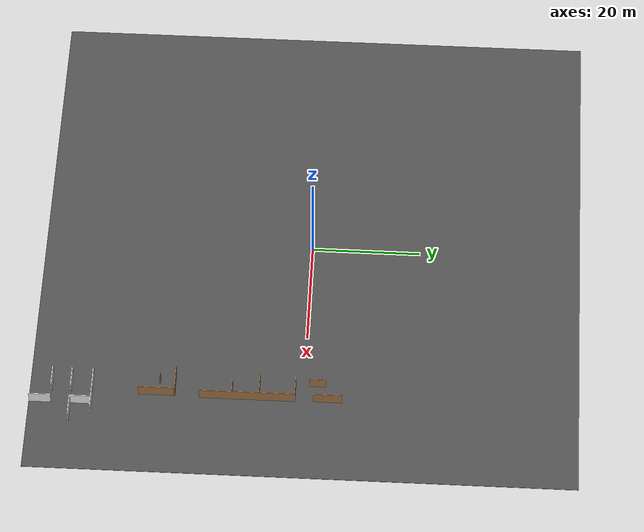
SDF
<sdf version="1.6">
 <world name="default">
  <model name="ground_plane">
   <static>1</static>
   <link name="link">
    <collision name="collision">
     <geometry><plane><normal>0 0 1</normal><size>100 100</size></plane></geometry>
     <surface><friction><ode><mu>100</mu><mu2>50</mu2></ode></friction></surface>
    </collision>
    <visual name="visual">
     <cast_shadows>0</cast_shadows>
     <geometry><plane><normal>0 0 1</normal><size>100 100</size></plane></geometry>
     <material>
      <script><uri>file://media/materials/scripts/gazebo.material</uri><name>Gazebo/Grey</name></script>
     </material>
    </visual>
   </link>
  </model>
  <model name="asphalt_plane">
   <static>1</static>
   <link name="link">
    <collision name="collision"><geometry><box><size>100 100 0.1</size></box></geometry></collision>
    <visual name="visual">
     <cast_shadows>0</cast_shadows>
     <geometry><box><size>100 100 0.1</size></box></geometry>
     <material>
      <script>
       <uri>model://asphalt_plane/materials/scripts</uri>
       <uri>model://asphalt_plane/materials/textures</uri>
       <name>vrc/asphalt</name>
      </script>
     </material>
    </visual>
   </link>
  </model>
  <model name="Medium_wall_wall_clone_0">
   <pose>35.9451 -38.5658 0 0 -0 0</pose>
   <link name="Wall_0">
    <collision name="Wall_0_Collision">
     <geometry><box><size>4 0.15 2.5</size></box></geometry>
     <pose>0 0 1.25 0 -0 0</pose>
    </collision>
    <visual name="Wall_0_Visual">
     <pose>0 0 1.25 0 -0 0</pose>
     <geometry><box><size>4 0.15 2.5</size></box></geometry>
     <material>
      <script><uri>file://media/materials/scripts/gazebo.material</uri><name>Gazebo/Medium_walls</name></script>
      <ambient>1 1 1 1</ambient>
     </material>
     <meta><layer>0</layer></meta>
    </visual>
   </link>
   <static>1</static>
  </model>
  <model name="Medium_wall_wall_clone_1">
   <pose>31.9451 -38.5658 0 0 -0 0</pose>
   <link name="Wall_0">
    <collision name="Wall_0_Collision">
     <geometry><box><size>4 0.15 2.5</size></box></geometry>
     <pose>0 0 1.25 0 -0 0</pose>
    </collision>
    <visual name="Wall_0_Visual">
     <pose>0 0 1.25 0 -0 0</pose>
     <geometry><box><size>4 0.15 2.5</size></box></geometry>
     <material>
      <script><uri>file://media/materials/scripts/gazebo.material</uri><name>Gazebo/Medium_walls</name></script>
      <ambient>1 1 1 1</ambient>
     </material>
     <meta><layer>0</layer></meta>
    </visual>
   </link>
   <static>1</static>
  </model>
  <model name="Medium_wall_wall_clone_3">
   <pose>31.9806 -42.4199 0 0 -0 0</pose>
   <link name="Wall_0">
    <collision name="Wall_0_Collision">
     <geometry><box><size>4 0.15 2.5</size></box></geometry>
     <pose>0 0 1.25 0 -0 0</pose>
    </collision>
    <visual name="Wall_0_Visual">
     <pose>0 0 1.25 0 -0 0</pose>
     <geometry><box><size>4 0.15 2.5</size></box></geometry>
     <material>
      <script><uri>file://media/materials/scripts/gazebo.material</uri><name>Gazebo/Medium_walls</name></script>
      <ambient>1 1 1 1</ambient>
     </material>
     <meta><layer>0</layer></meta>
    </visual>
   </link>
   <static>1</static>
  </model>
  <model name="Medium_wall_wall_clone_4">
   <pose>31.933 -45.9888 0 0 -0 0</pose>
   <link name="Wall_0">
    <collision name="Wall_0_Collision">
     <geometry><box><size>4 0.15 2.5</size></box></geometry>
     <pose>0 0 1.25 0 -0 0</pose>
    </collision>
    <visual name="Wall_0_Visual">
     <pose>0 0 1.25 0 -0 0</pose>
     <geometry><box><size>4 0.15 2.5</size></box></geometry>
     <material>
      <script><uri>file://media/materials/scripts/gazebo.material</uri><name>Gazebo/Medium_walls</name></script>
      <ambient>1 1 1 1</ambient>
     </material>
     <meta><layer>0</layer></meta>
    </visual>
   </link>
   <static>1</static>
  </model>
  <model name="Medium_wall_wall_1_clone_0">
   <pose>36.0534 -40.4954 0 0 -0 1.57079</pose>
   <link name="Wall_0">
    <collision name="Wall_0_Collision">
     <geometry><box><size>4 0.15 2.5</size></box></geometry>
     <pose>0 0 1.25 0 -0 0</pose>
    </collision>
    <visual name="Wall_0_Visual">
     <pose>0 0 1.25 0 -0 0</pose>
     <geometry><box><size>4 0.15 2.5</size></box></geometry>
     <material>
      <script><uri>file://media/materials/scripts/gazebo.material</uri><name>Gazebo/Medium_walls</name></script>
      <ambient>1 1 1 1</ambient>
     </material>
     <meta><layer>0</layer></meta>
    </visual>
   </link>
   <static>1</static>
  </model>
  <model name="Medium_wall_wall_1_clone_1">
   <pose>36.0534 -47.9139 0 0 -0 1.57079</pose>
   <link name="Wall_0">
    <collision name="Wall_0_Collision">
     <geometry><box><size>4 0.15 2.5</size></box></geometry>
     <pose>0 0 1.25 0 -0 0</pose>
    </collision>
    <visual name="Wall_0_Visual">
     <pose>0 0 1.25 0 -0 0</pose>
     <geometry><box><size>4 0.15 2.5</size></box></geometry>
     <material>
      <script><uri>file://media/materials/scripts/gazebo.material</uri><name>Gazebo/Medium_walls</name></script>
      <ambient>1 1 1 1</ambient>
     </material>
     <meta><layer>0</layer></meta>
    </visual>
   </link>
   <static>1</static>
  </model>
  <model name="Medium_wall_wall_clone_5">
   <pose>38.0534 -42.4199 0 0 -0 0</pose>
   <link name="Wall_0">
    <collision name="Wall_0_Collision">
     <geometry><box><size>4 0.15 2.5</size></box></geometry>
     <pose>0 0 1.25 0 -0 0</pose>
    </collision>
    <visual name="Wall_0_Visual">
     <pose>0 0 1.25 0 -0 0</pose>
     <geometry><box><size>4 0.15 2.5</size></box></geometry>
     <material>
      <script><uri>file://media/materials/scripts/gazebo.material</uri><name>Gazebo/Medium_walls</name></script>
      <ambient>1 1 1 1</ambient>
     </material>
     <meta><layer>0</layer></meta>
    </visual>
   </link>
   <static>1</static>
  </model>
  <model name="Soft_wall_v1_1">
   <pose>-14.3408 -3.86286 0 0 -0 0</pose>
   <link name="Wall_339">
    <collision name="Wall_339_Collision">
     <geometry><box><size>5.25 0.15 2.5</size></box></geometry>
     <pose>0 0 1.25 0 -0 0</pose>
    </collision>
    <visual name="Wall_339_Visual">
     <pose>0 0 1.25 0 -0 0</pose>
     <geometry><box><size>5.25 0.15 2.5</size></box></geometry>
     <material>
      <script><uri>file://media/materials/scripts/gazebo.material</uri><name>Gazebo/Wood</name></script>
      <ambient>1 1 1 1</ambient>
     </material>
     <meta><layer>0</layer></meta>
    </visual>
    <pose>47.9855 8.2459 0 0 0 -1.5708</pose>
   </link>
   <link name="Wall_343">
    <collision name="Wall_343_Collision">
     <geometry><box><size>17.5 0.15 2.5</size></box></geometry>
     <pose>0 0 1.25 0 -0 0</pose>
    </collision>
    <visual name="Wall_343_Visual">
     <pose>0 0 1.25 0 -0 0</pose>
     <geometry><box><size>17.5 0.15 2.5</size></box></geometry>
     <material>
      <script><uri>file://media/materials/scripts/gazebo.material</uri><name>Gazebo/Wood</name></script>
      <ambient>1 1 1 1</ambient>
     </material>
     <meta><layer>0</layer></meta>
    </visual>
    <pose>48.1101 -6.45706 0 0 0 -1.5708</pose>
   </link>
   <link name="Wall_348">
    <collision name="Wall_348_Collision">
     <geometry><box><size>6.75 0.15 2.5</size></box></geometry>
     <pose>0 0 1.25 0 -0 0</pose>
    </collision>
    <visual name="Wall_348_Visual">
     <pose>0 0 1.25 0 -0 0</pose>
     <geometry><box><size>6.75 0.15 2.5</size></box></geometry>
     <material>
      <script><uri>file://media/materials/scripts/gazebo.material</uri><name>Gazebo/Wood</name></script>
      <ambient>1 1 1 1</ambient>
     </material>
     <meta><layer>0</layer></meta>
    </visual>
    <pose>47.8962 -22.9805 0 0 -0 1.5708</pose>
   </link>
   <link name="Wall_350">
    <collision name="Wall_350_Collision">
     <geometry><box><size>4.25 0.15 2.5</size></box></geometry>
     <pose>0 0 1.25 0 -0 0</pose>
    </collision>
    <visual name="Wall_350_Visual">
     <pose>0 0 1.25 0 -0 0</pose>
     <geometry><box><size>4.25 0.15 2.5</size></box></geometry>
     <material>
      <script><uri>file://media/materials/scripts/gazebo.material</uri><name>Gazebo/Wood</name></script>
      <ambient>1 1 1 1</ambient>
     </material>
     <meta><layer>0</layer></meta>
    </visual>
    <pose>46.0601 2.21794 0 0 -0 3.14159</pose>
   </link>
   <link name="Wall_364">
    <collision name="Wall_364_Collision">
     <geometry><box><size>4 0.15 2.5</size></box></geometry>
     <pose>0 0 1.25 0 -0 0</pose>
    </collision>
    <visual name="Wall_364_Visual">
     <pose>0 0 1.25 0 -0 0</pose>
     <geometry><box><size>4 0.15 2.5</size></box></geometry>
     <material>
      <script><uri>file://media/materials/scripts/gazebo.material</uri><name>Gazebo/Wood</name></script>
      <ambient>1 1 1 1</ambient>
     </material>
     <meta><layer>0</layer></meta>
    </visual>
    <pose>46.1523 -4.31048 0 0 -0 3.14159</pose>
   </link>
   <link name="Wall_367">
    <collision name="Wall_367_Collision">
     <geometry><box><size>3 0.15 2.5</size></box></geometry>
     <pose>0 0 1.25 0 -0 0</pose>
    </collision>
    <visual name="Wall_367_Visual">
     <pose>0 0 1.25 0 -0 0</pose>
     <geometry><box><size>3 0.15 2.5</size></box></geometry>
     <material>
      <script><uri>file://media/materials/scripts/gazebo.material</uri><name>Gazebo/Wood</name></script>
      <ambient>1 1 1 1</ambient>
     </material>
     <meta><layer>0</layer></meta>
    </visual>
    <pose>46.6523 -9.27408 0 0 -0 3.14159</pose>
   </link>
   <link name="Wall_384">
    <collision name="Wall_384_Collision">
     <geometry><box><size>3 0.15 2.5</size></box></geometry>
     <pose>0 0 1.25 0 -0 0</pose>
    </collision>
    <visual name="Wall_384_Visual">
     <pose>0 0 1.25 0 -0 0</pose>
     <geometry><box><size>3 0.15 2.5</size></box></geometry>
     <material>
      <script><uri>file://media/materials/scripts/gazebo.material</uri><name>Gazebo/Wood</name></script>
      <ambient>1 1 1 1</ambient>
     </material>
     <meta><layer>0</layer></meta>
    </visual>
    <pose>44.7424 6.32192 0 0 -0 1.5708</pose>
   </link>
   <link name="Wall_412">
    <collision name="Wall_412_Collision">
     <geometry><box><size>4.75 0.15 2.5</size></box></geometry>
     <pose>0 0 1.25 0 -0 0</pose>
    </collision>
    <visual name="Wall_412_Visual">
     <pose>0 0 1.25 0 -0 0</pose>
     <geometry><box><size>4.75 0.15 2.5</size></box></geometry>
     <material>
      <script><uri>file://media/materials/scripts/gazebo.material</uri><name>Gazebo/Wood</name></script>
      <ambient>1 1 1 1</ambient>
     </material>
     <meta><layer>0</layer></meta>
    </visual>
    <pose>45.5962 -19.6805 0 0 -0 3.14159</pose>
   </link>
   <link name="Wall_415">
    <collision name="Wall_415_Collision">
     <geometry><box><size>1.25 0.15 2.5</size></box></geometry>
     <pose>0 0 1.25 0 -0 0</pose>
    </collision>
    <visual name="Wall_415_Visual">
     <pose>0 0 1.25 0 -0 0</pose>
     <geometry><box><size>1.25 0.15 2.5</size></box></geometry>
     <material>
      <script><uri>file://media/materials/scripts/gazebo.material</uri><name>Gazebo/Wood</name></script>
      <ambient>1 1 1 1</ambient>
     </material>
     <meta><layer>0</layer></meta>
    </visual>
    <pose>45.0231 -22.4985 0 0 -0 0</pose>
   </link>
   <static>1</static>
  </model>
 </world>
</sdf>
